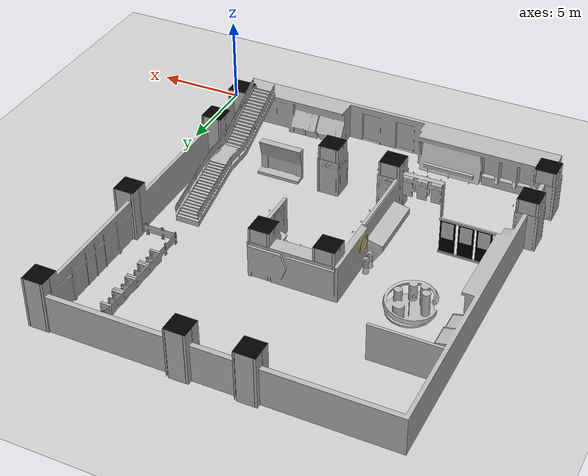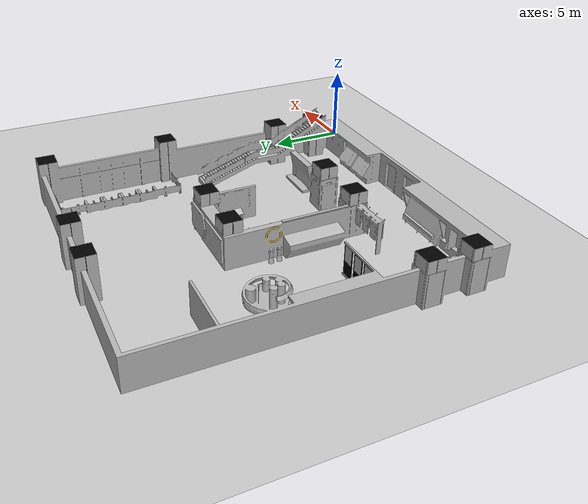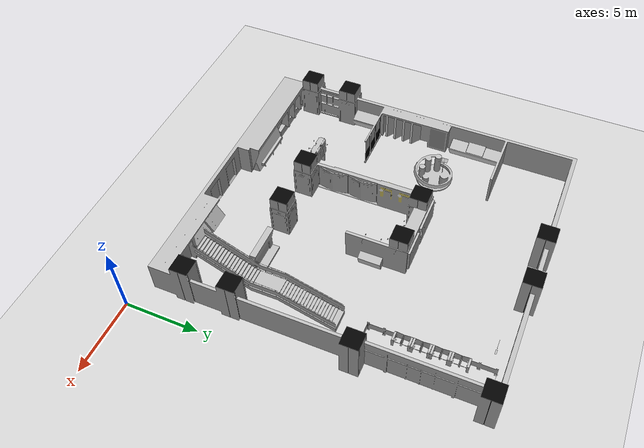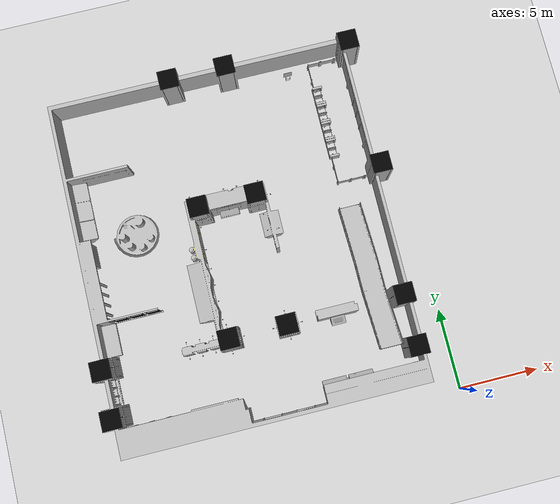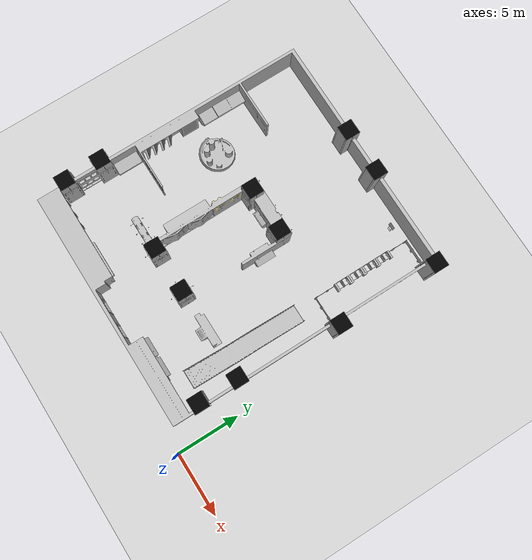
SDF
<sdf version="1.7">
 <world name="default">
  <model name="ground_plane">
   <static>1</static>
   <link name="link">
    <collision name="collision">
     <geometry><plane><normal>0 0 1</normal><size>100 100</size></plane></geometry>
     <surface><friction><ode><mu>100</mu><mu2>50</mu2></ode></friction></surface>
    </collision>
    <visual name="visual">
     <cast_shadows>0</cast_shadows>
     <geometry><plane><normal>0 0 1</normal><size>100 100</size></plane></geometry>
     <material>
      <script><uri>file://media/materials/scripts/gazebo.material</uri><name>Gazebo/Grey</name></script>
     </material>
    </visual>
   </link>
  </model>
  <model name="iscas_museum_1">
   <link name="link">
    <inertial><mass>15</mass></inertial>
    <collision name="collision">
     <pose>0 0 0 0 0 -1.57</pose>
     <geometry><mesh><uri>model://iscas_museum/meshes/ISCAS_museum.dae</uri></mesh></geometry>
    </collision>
    <visual name="visual">
     <pose>0 0 0 0 0 -1.57</pose>
     <geometry><mesh><uri>model://iscas_museum/meshes/ISCAS_museum.dae</uri></mesh></geometry>
    </visual>
   </link>
   <static>1</static>
   <pose>-11.594 11.643 0 0 -0 0</pose>
  </model>
 </world>
</sdf>
